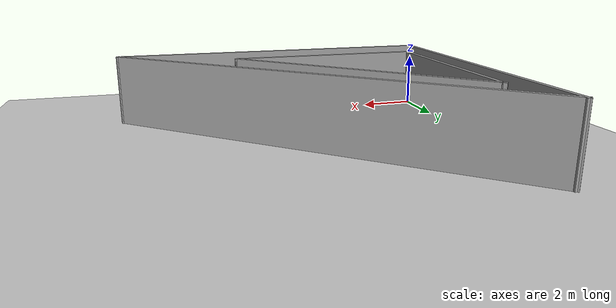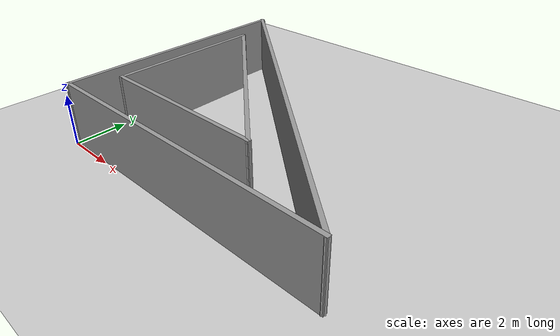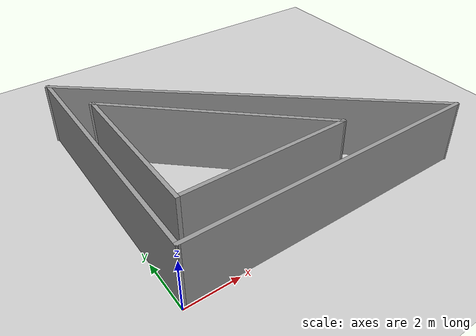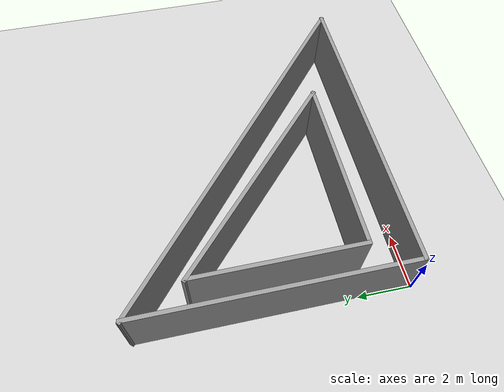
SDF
<sdf version="1.6">
 <world name="default">
  <light name="sun" type="directional">
   <pose>0 0 10 0 -0 0</pose>
   <diffuse>0.8 0.8 0.8 1</diffuse>
   <specular>0.1 0.1 0.1 1</specular>
   <attenuation>
    <range>1000</range>
    <constant>0.9</constant>
    <linear>0.01</linear>
    <quadratic>0.001</quadratic>
   </attenuation>
   <direction>-0.5 0.5 -1</direction>
  </light>
  <model name="ground_plane">
   <static>1</static>
   <link name="link">
    <collision name="collision">
     <geometry><plane><normal>0 0 1</normal><size>100 100</size></plane></geometry>
     <surface><friction><ode><mu>100</mu><mu2>50</mu2></ode></friction></surface>
    </collision>
    <visual name="visual">
     <cast_shadows>0</cast_shadows>
     <geometry><plane><normal>0 0 1</normal><size>100 100</size></plane></geometry>
     <material>
      <script><uri>file://media/materials/scripts/gazebo.material</uri><name>Gazebo/Grey</name></script>
     </material>
    </visual>
   </link>
  </model>
  <gravity>0 0 -9.8</gravity>
  <magnetic_field>6e-06 2.3e-05 -4.2e-05</magnetic_field>
  <atmosphere type="adiabatic"/>
  <physics name="default_physics" default="0" type="ode">
   <max_step_size>0.001</max_step_size>
   <real_time_factor>1</real_time_factor>
   <real_time_update_rate>1000</real_time_update_rate>
  </physics>
  <scene><ambient>0.4 0.4 0.4 1</ambient><background>0.7 0.7 0.7 1</background><shadows>1</shadows></scene>
  <spherical_coordinates>
   <surface_model>EARTH_WGS84</surface_model>
   <latitude_deg>0</latitude_deg>
   <longitude_deg>0</longitude_deg>
   <elevation>0</elevation>
   <heading_deg>0</heading_deg>
  </spherical_coordinates>
  <model name="mapa1">
   <pose>5.8678 5.06046 0 0 -0 0</pose>
   <link name="Wall_25">
    <collision name="Wall_25_Collision">
     <geometry><box><size>10 0.15 2.5</size></box></geometry>
     <pose>0 0 1.25 0 -0 0</pose>
    </collision>
    <visual name="Wall_25_Visual">
     <pose>0 0 1.25 0 -0 0</pose>
     <geometry><box><size>10 0.15 2.5</size></box></geometry>
     <material>
      <script><uri>file://media/materials/scripts/gazebo.material</uri><name>Gazebo/Grey</name></script>
      <ambient>1 1 1 1</ambient>
     </material>
     <meta><layer>0</layer></meta>
    </visual>
    <pose>-5.78479 0 0 0 0 -1.5708</pose>
   </link>
   <link name="Wall_26">
    <collision name="Wall_26_Collision">
     <geometry><box><size>11.75 0.15 2.5</size></box></geometry>
     <pose>0 0 1.25 0 -0 0</pose>
    </collision>
    <visual name="Wall_26_Visual">
     <pose>0 0 1.25 0 -0 0</pose>
     <geometry><box><size>11.75 0.15 2.5</size></box></geometry>
     <material>
      <script><uri>file://media/materials/scripts/gazebo.material</uri><name>Gazebo/Grey</name></script>
      <ambient>1 1 1 1</ambient>
     </material>
     <meta><layer>0</layer></meta>
    </visual>
    <pose>0.015209 -4.925 0 0 -0 0</pose>
   </link>
   <link name="Wall_28">
    <collision name="Wall_28_Collision">
     <geometry><box><size>15.391 0.15 2.5</size></box></geometry>
     <pose>0 0 1.25 0 -0 0</pose>
    </collision>
    <visual name="Wall_28_Visual">
     <pose>0 0 1.25 0 -0 0</pose>
     <geometry><box><size>15.391 0.15 2.5</size></box></geometry>
     <material>
      <script><uri>file://media/materials/scripts/gazebo.material</uri><name>Gazebo/Grey</name></script>
      <ambient>1 1 1 1</ambient>
     </material>
     <meta><layer>0</layer></meta>
    </visual>
    <pose>0 0 0 0 -0 2.43889</pose>
   </link>
   <link name="Wall_30">
    <collision name="Wall_30_Collision">
     <geometry><box><size>6.25 0.15 2.5</size></box></geometry>
     <pose>0 0 1.25 0 -0 0</pose>
    </collision>
    <visual name="Wall_30_Visual">
     <pose>0 0 1.25 0 -0 0</pose>
     <geometry><box><size>6.25 0.15 2.5</size></box></geometry>
     <material>
      <script><uri>file://media/materials/scripts/gazebo.material</uri><name>Gazebo/Grey</name></script>
      <ambient>1 1 1 1</ambient>
     </material>
     <meta><layer>0</layer></meta>
    </visual>
    <pose>-4.88748 -0.284643 0 0 0 -1.5708</pose>
   </link>
   <link name="Wall_31">
    <collision name="Wall_31_Collision">
     <geometry><box><size>6.75 0.15 2.5</size></box></geometry>
     <pose>0 0 1.25 0 -0 0</pose>
    </collision>
    <visual name="Wall_31_Visual">
     <pose>0 0 1.25 0 -0 0</pose>
     <geometry><box><size>6.75 0.15 2.5</size></box></geometry>
     <material>
      <script><uri>file://media/materials/scripts/gazebo.material</uri><name>Gazebo/Grey</name></script>
      <ambient>1 1 1 1</ambient>
     </material>
     <meta><layer>0</layer></meta>
    </visual>
    <pose>-1.58747 -3.33464 0 0 -0 0</pose>
   </link>
   <link name="Wall_32">
    <collision name="Wall_32_Collision">
     <geometry><box><size>9.19053 0.15 2.5</size></box></geometry>
     <pose>0 0 1.25 0 -0 0</pose>
    </collision>
    <visual name="Wall_32_Visual">
     <pose>0 0 1.25 0 -0 0</pose>
     <geometry><box><size>9.19053 0.15 2.5</size></box></geometry>
     <material>
      <script><uri>file://media/materials/scripts/gazebo.material</uri><name>Gazebo/Grey</name></script>
      <ambient>1 1 1 1</ambient>
     </material>
     <meta><layer>0</layer></meta>
    </visual>
    <pose>-1.60268 -0.261829 0 0 -0 2.39412</pose>
   </link>
   <static>1</static>
  </model>
 </world>
</sdf>
